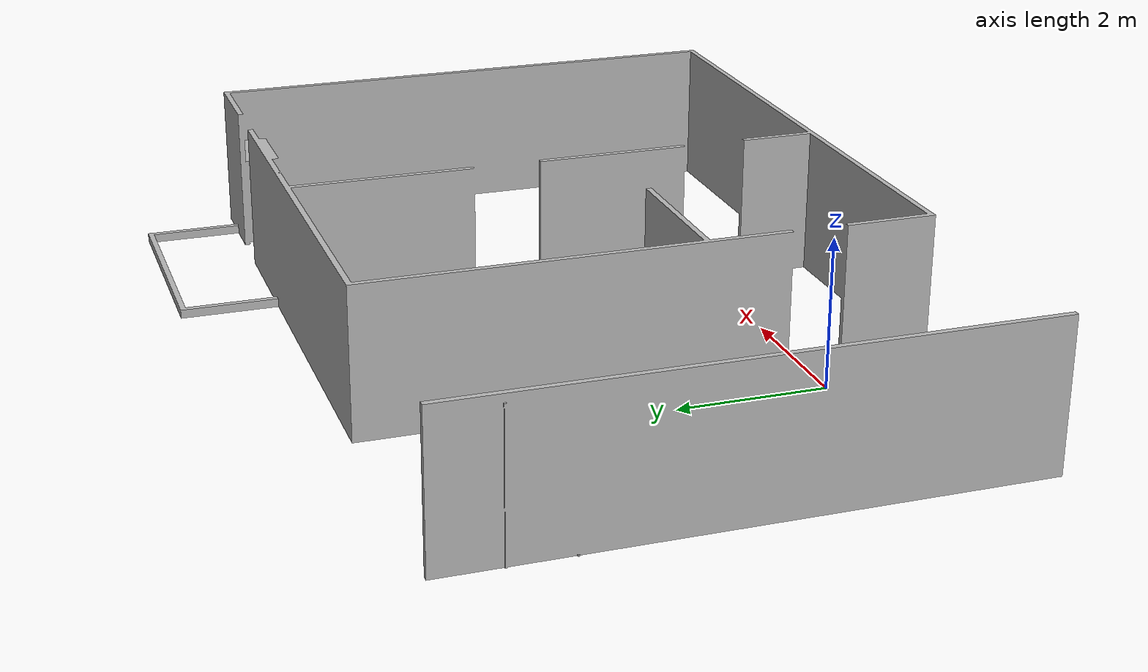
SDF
<?xml version="1.0"?>
<sdf version="1.6">
  <model name="rwc2019/walls">
    <link name="1_link">
      <collision name="1_col">
        <geometry>
          <mesh>
            <uri>model://rwc2019/walls/shape/heightmap2.stl</uri>
          </mesh>
        </geometry>
      </collision>
      <visual name="1_vis">
        <geometry>
          <mesh>
            <uri>model://rwc2019/walls/shape/heightmap2.stl</uri>
          </mesh>
        </geometry>
      </visual>
      <pose>14.0 15.625 0 0 0 -1.5707963267948966</pose>
    </link>
    <static>true</static>
  </model>
</sdf>
